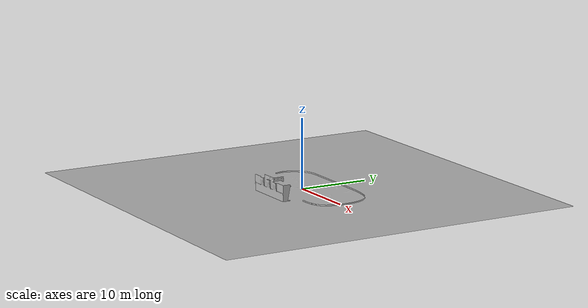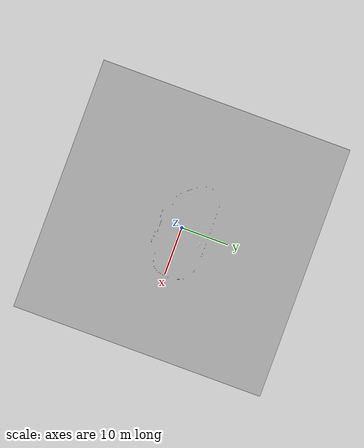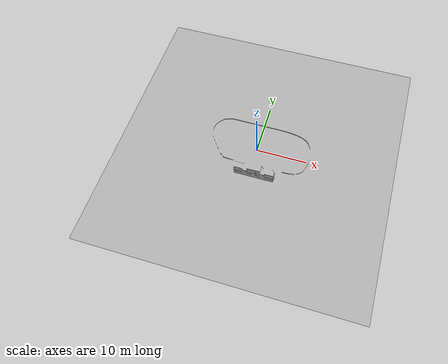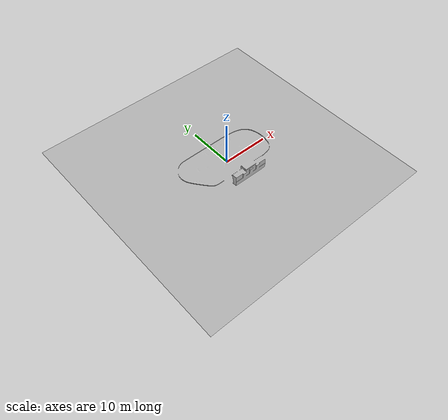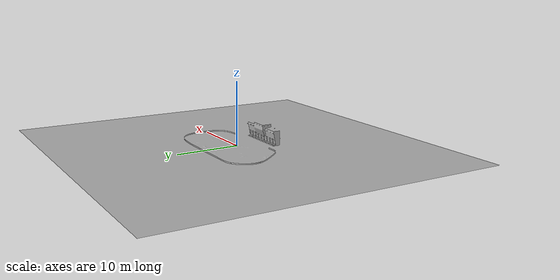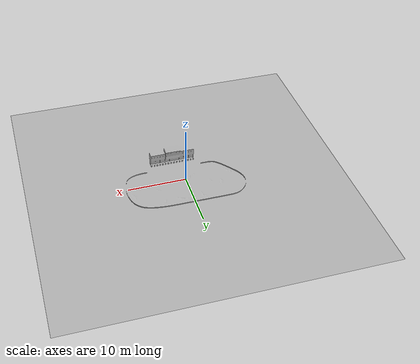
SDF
<?xml version="1.0"?>
<sdf version="1.4">
<world name="Spain_track">
  <scene>
    <ambient>0.5 0.5 0.5 1.0</ambient>
    <shadows>0</shadows>
    <sky></sky>
  </scene>
  <include>
    <uri>model://sun</uri>
    <pose>0.0 0.0 15.0 0 0 0</pose>
    <cast_shadows>false</cast_shadows>
    <attenuation>
      <constant>0.5</constant>
      <linear>0.01</linear>
      <quadratic>0.0</quadratic>
      <range>100</range>
    </attenuation>
  </include>
  <light type="point" name="Light 1">
         <pose>0 0 15 0 0 0</pose>
         <diffuse>.225 .225 .225 1</diffuse>
         <specular>.1 .1 .1 1</specular>
         <attenuation>
                <constant>0.4</constant>
                <linear>0.01</linear>
                <quadratic>0.00</quadratic>
                <range>50</range>
         </attenuation>
         <direction>0 0 -1</direction>
         <cast_shadows>false</cast_shadows>
  </light>
  <include>
    <uri>model://models/Spain_track</uri>
    <pose>0 0 0 0 0 0</pose>
    <name>racetrack</name>
  </include>
  <physics type='ode'>
    <max_step_size>0.001000</max_step_size>
    <real_time_factor>0.02000</real_time_factor>
    <real_time_update_rate>20.000000</real_time_update_rate>
    <gravity>0.000000 0.000000 -9.800000</gravity>
  </physics>
</world>
</sdf>

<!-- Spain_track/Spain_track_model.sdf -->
<sdf version="1.4">
<model name="Spain_track_model">
<link name="track">
<collision name="collision">
<pose>0 0 0 0 0 0</pose>
<geometry>
<mesh>
<uri>model://meshes/Spain_track/Spain_track.dae</uri>
</mesh>
</geometry>
</collision>
<visual name="visual">
<pose>0 0 0 0 0 0</pose>
<geometry>
<mesh>
<uri>model://meshes/Spain_track/Spain_track.dae</uri>
</mesh>
</geometry>
</visual>
</link>
<static>1</static>
</model>
</sdf>
